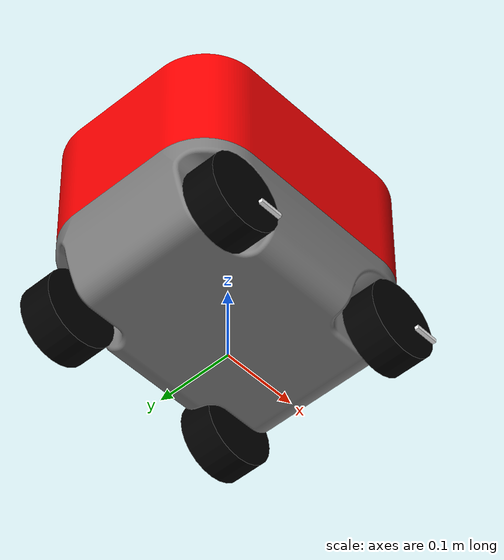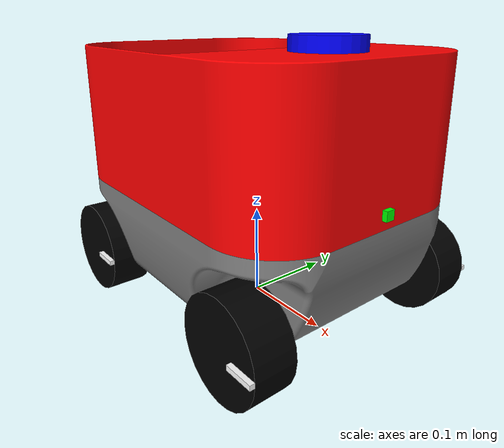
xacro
<?xml version="1.0" encoding="utf-8"?>
<robot name="officebot"
	xmlns:xacro="http://www.ros.org/wiki/xacro">
	<!-- Matherials -->
	<xacro:include filename="$(find officebot_description)/urdf/officebot_materials.xacro" />
    <!-- Gazebo parameters -->
    <xacro:include filename="$(find officebot_description)/urdf/officebot.gazebo" />
    <xacro:property name="clearance" value="0.100" />
    <xacro:property name="body_height" value="0.17" />
    <xacro:property name="wheel_radius" value="0.05035"/>
    <xacro:property name="wheel_separation" value="0.243"/>
    <xacro:property name="wheel_distance" value="0.125"/>
    <xacro:property name="wheel_width" value="0.043"/>
    <xacro:property name="wheel_marker_length" value="0.03"/>
    <xacro:property name="wheel_marker_width" value="0.005"/>
    <xacro:property name="mass" value="0.1"/>
    <xacro:property name="wheel_mass" value="0.2"/>
    <xacro:property name="marker_mass" value="0.0"/>
    <xacro:property name="inertia" value="0.3"/>
    <xacro:property name="PI" value="3.1415926"/>
    <xacro:property name="wheel_ixx" value="${wheel_mass*(3*wheel_radius*wheel_radius+wheel_width*wheel_width)/12}" />
    <xacro:property name="wheel_ixy" value="0.0" />
    <xacro:property name="wheel_ixz" value="0.0" />
    <xacro:property name="wheel_iyy" value="${wheel_mass*(3*wheel_radius*wheel_radius+wheel_width*wheel_width)/12}" />
    <xacro:property name="wheel_iyz" value="0.0" />
    <xacro:property name="wheel_izz" value="${wheel_mass*wheel_radius*wheel_radius/2}" />
	<!-- officebot_base -->
    <link name="base_link">
    </link>
	<link name="body_link">
		<visual>
			<origin xyz="0 0 -0.015" rpy="${PI/2} 0 ${PI/2}" />
            <geometry>
                <mesh filename="package://officebot_description/meshes/officebot_body_bottom.stl" scale="0.001 0.001 0.001" />
            </geometry>
			<material name="Grey" />
		</visual>
		<visual>
			<origin xyz="0 0 0.085" rpy="${PI/2} 0 ${PI/2}" />
            <geometry>
                <mesh filename="package://officebot_description/meshes/officebot_body_top.stl" scale="0.001 0.001 0.001" />
            </geometry>
			<material name="Red" />
		</visual>
		<collision>
			<origin xyz="0 0 -0.015" rpy="${PI/2} 0 ${PI/2}" />
            <geometry>
                <mesh filename="package://officebot_description/meshes/officebot_body_bottom.stl" scale="0.001 0.001 0.001" />
            </geometry>
		</collision>
        <inertial>
            <origin xyz="0 0 ${clearance}" rpy="0 0 0" />
            <mass value="${mass}" />
            <inertia ixx="${inertia}" ixy="0.0" ixz="0.0" iyy="${inertia}" iyz="0.0" izz="${inertia}" />
        </inertial>
	</link>
    <joint name="base_to_body" type="fixed">
        <axis rpy="0 0 0" xyz="0 0 0"/>
        <parent link="base_link" />
        <child link="body_link" />
        <origin xyz="0 0 ${wheel_radius}" rpy="0 0 0"/>
    </joint>
    <!-- Lidar -->
    <link name="laser">
        <inertial>
            <origin xyz="0 0 0" rpy="0 0 0" />
            <mass value="0.1" />
            <inertia ixx="0.0" ixy="0.0" ixz="0.0" iyy="0.0" iyz="0.0" izz="0.0" />
        </inertial>
        <visual>
            <origin xyz="0 0 0" rpy="0 0 0" />
            <geometry>
                <cylinder radius="0.036" length="0.021"/>
            </geometry>
            <material name="Blue" />
        </visual>
        <collision>
            <origin xyz="0 0 0" rpy="0 0 0"/>
            <geometry>
                <cylinder radius="0.036" length="0.021"/>
            </geometry>
        </collision>
    </link>
    <joint name="joint_sensor_laser" type="fixed">
    <!-- ${PI} ${PI * -0.375} -->
	    <origin xyz="0.100 0.0 0.235" rpy="0 0 0"/>
        <parent link="body_link"/>
        <child link="laser"/>
    </joint>
    <!-- IMU -->
    <link name="imu">
        <inertial>
            <origin xyz="0 0 0" rpy="0 0 0" />
            <mass value="0.1" />
            <inertia ixx="0.0" ixy="0.0" ixz="0.0" iyy="0.0" iyz="0.0" izz="0.0" />
        </inertial>
        <visual>
            <origin xyz="0 0 0" rpy="0 0 0" />
            <geometry>
                <box size="0.016 0.016 0.005" />
            </geometry>
            <material name="Blue" />
        </visual>
        <collision>
            <origin xyz="0 0 0" rpy="0 0 0"/>
            <geometry>
                <box size="0.016 0.016 0.005" />
            </geometry>
        </collision>
    </link>
    <joint name="joint_imu" type="fixed">
	    <origin xyz="0.0 0.0 0.062" rpy="0 0 0"/>
        <parent link="body_link"/>
        <child link="imu"/>
    </joint>
    <!-- Camera-->
    <link name="camera_link">
        <inertial>
            <origin xyz="0 0 0" rpy="0 0 0" />
            <mass value="0.1" />
            <inertia ixx="0.0" ixy="0.0" ixz="0.0" iyy="0.0" iyz="0.0" izz="0.0" />
        </inertial>
        <visual>
            <origin xyz="0 0 0" rpy="0 0 0" />
            <geometry>
                <box size="0.010 0.010 0.010" />
            </geometry>
            <material name="Green" />
        </visual>
        <collision>
            <origin xyz="0 0 0" rpy="0 0 0"/>
            <geometry>
                <box size="0.010 0.010 0.010" />
            </geometry>
        </collision>
    </link>
    <joint name="joint_sensor_camera" type="fixed">
        <parent link="body_link"/>
        <child link="camera_link"/>
        <origin xyz="0.175 0 0.100" rpy="0 0 0"/>
    </joint>
    <!-- IMU -->
    <!-- rear lidar -->
    <!-- Wheels -->
    <link name="rear_left_wheel">
        <visual>
			<origin xyz="0 0 0" rpy="${PI / 2} 0 0" />
            <geometry>
                <cylinder length="${wheel_width}" radius="${wheel_radius}"/>
            </geometry>
            <material name="Black" />
        </visual>
        <collision>
			<origin xyz="0 0 0" rpy="${PI / 2} 0 0" />
            <geometry>
                <cylinder length="${wheel_width}" radius="${wheel_radius}"/>
            </geometry>
        </collision>
        <inertial>
            <mass value="${wheel_mass}" />
            <inertia ixx="${wheel_ixx}" ixy="${wheel_ixy}" ixz="${wheel_ixz}" iyy="${wheel_iyy}" iyz="${wheel_iyz}" izz="${wheel_izz}" />
        </inertial>
    </link>
    <link name="rear_left_wheel_marker">
        <visual>
            <origin xyz="0 0 0" rpy="0 0 0" />
            <geometry>
                <box size="${wheel_marker_length} ${wheel_marker_width} ${wheel_marker_width}" />
            </geometry>
            <material name="White" />
        </visual>
        <inertial>
            <mass value="${marker_mass}" />
            <inertia ixx="0.0" ixy="0.0" ixz="0.0" iyy="0.0" iyz="0.0" izz="0.0" />
        </inertial>
    </link>
    <link name="rear_right_wheel">
        <visual>
			<origin xyz="0 0 0" rpy="${PI / 2} 0 0" />
            <geometry>
                <cylinder length="${wheel_width}" radius="${wheel_radius}"/>
            </geometry>
            <material name="Black" />
        </visual>
        <collision>
			<origin xyz="0 0 0" rpy="${PI / 2} 0 0" />
            <geometry>
                <cylinder length="${wheel_width}" radius="${wheel_radius}"/>
            </geometry>
        </collision>
        <inertial>
            <mass value="${wheel_mass}" />
            <inertia ixx="${wheel_ixx}" ixy="${wheel_ixy}" ixz="${wheel_ixz}" iyy="${wheel_iyy}" iyz="${wheel_iyz}" izz="${wheel_izz}" />
        </inertial>
    </link>
    <link name="rear_right_wheel_marker">
        <visual>
            <origin xyz="0 0 0" rpy="0 0 0" />
            <geometry>
                <box size="${wheel_marker_length} ${wheel_marker_width} ${wheel_marker_width}" />
            </geometry>
            <material name="White" />
        </visual>
        <inertial>
            <mass value="${marker_mass}" />
            <inertia ixx="0.0" ixy="0.0" ixz="0.0" iyy="0.0" iyz="0.0" izz="0.0" />
        </inertial>
    </link>
    <link name="front_left_wheel">
        <visual>
			<origin xyz="0 0 0" rpy="${PI / 2} 0 0" />
            <geometry>
                <cylinder length="${wheel_width}" radius="${wheel_radius}"/>
            </geometry>
            <material name="Black" />
        </visual>
        <collision>
			<origin xyz="0 0 0" rpy="${PI / 2} 0 0" />
            <geometry>
                <cylinder length="${wheel_width}" radius="${wheel_radius}"/>
            </geometry>
        </collision>
        <inertial>
            <mass value="${wheel_mass}" />
            <inertia ixx="${wheel_ixx}" ixy="${wheel_ixy}" ixz="${wheel_ixz}" iyy="${wheel_iyy}" iyz="${wheel_iyz}" izz="${wheel_izz}" />
        </inertial>
    </link>
    <link name="front_left_wheel_marker">
        <visual>
            <origin xyz="0 0 0" rpy="0 0 0" />
            <geometry>
                <box size="${wheel_marker_length} ${wheel_marker_width} ${wheel_marker_width}" />
            </geometry>
            <material name="White" />
        </visual>
        <inertial>
            <mass value="${marker_mass}" />
            <inertia ixx="0.0" ixy="0.0" ixz="0.0" iyy="0.0" iyz="0.0" izz="0.0" />
        </inertial>
    </link>
    <link name="front_right_wheel">
        <visual>
			<origin xyz="0 0 0" rpy="${PI / 2} 0 0" />
            <geometry>
                <cylinder length="${wheel_width}" radius="${wheel_radius}"/>
            </geometry>
            <material name="Black" />
        </visual>
        <collision>
			<origin xyz="0 0 0" rpy="${PI / 2} 0 0" />
            <geometry>
                <cylinder length="${wheel_width}" radius="${wheel_radius}"/>
            </geometry>
        </collision>
        <inertial>
            <mass value="${wheel_mass}" />
            <inertia ixx="${wheel_ixx}" ixy="${wheel_ixy}" ixz="${wheel_ixz}" iyy="${wheel_iyy}" iyz="${wheel_iyz}" izz="${wheel_izz}" />
        </inertial>
    </link>
    <link name="front_right_wheel_marker">
        <visual>
            <origin xyz="0 0 0" rpy="0 0 0" />
            <geometry>
                <box size="${wheel_marker_length} ${wheel_marker_width} ${wheel_marker_width}" />
            </geometry>
            <material name="White" />
        </visual>
        <inertial>
            <mass value="${marker_mass}" />
            <inertia ixx="0.0" ixy="0.0" ixz="0.0" iyy="0.0" iyz="0.0" izz="0.0" />
        </inertial>
    </link>
    <joint name="base_to_rear_left_wheel" type="continuous">
        <axis rpy="0 0 0" xyz="0 1 0"/>
        <parent link="body_link" />
        <child link="rear_left_wheel" />
        <origin xyz="-${wheel_distance} ${wheel_separation/2} 0" rpy="0 0 0"/>
        <dynamics damping="0.0" friction="0.0"/>
        <limit effort= "100" velocity="100"/>
    </joint>
    <joint name="base_to_rear_right_wheel" type="continuous">
        <axis rpy="0 0 0" xyz="0 1 0"/>
        <parent link="body_link" />
        <child link="rear_right_wheel" />
		<origin xyz="-${wheel_distance} ${-1 * (wheel_separation/2)} 0" rpy="0 0 0"/>
        <dynamics damping="0.0" friction="0.0"/>
        <limit effort= "100" velocity="100"/>
    </joint>
    <joint name="base_to_front_left_wheel" type="continuous">
        <axis rpy="0 0 0" xyz="0 1 0"/>
        <parent link="body_link" />
        <child link="front_left_wheel" />
		<origin xyz="${wheel_distance} ${wheel_separation/2} 0" rpy="0 0 0" />
        <dynamics damping="0.0" friction="0.0"/>
        <limit effort= "100" velocity="100"/>
    </joint>
    <joint name="base_to_front_right_wheel" type="continuous">
        <axis rpy="0 0 0" xyz="0 1 0"/>
        <parent link="body_link" />
        <child link="front_right_wheel" />
		<origin xyz="${wheel_distance} ${-1 * (wheel_separation/2)} 0" rpy="0 0 0" />
        <dynamics damping="0.0" friction="0.0"/>
        <limit effort= "100" velocity="100"/>
    </joint>
    <joint name="rear_left_wheel_to_marker" type="fixed">
        <parent link="rear_left_wheel" />
        <child link="rear_left_wheel_marker" />
        <origin xyz="${wheel_radius - wheel_marker_length / 2} ${wheel_width / 2 + wheel_marker_width / 2} 0" rpy="0 0 0" />
    </joint>
    <joint name="rear_right_wheel_to_marker" type="fixed">
        <parent link="rear_right_wheel" />
        <child link="rear_right_wheel_marker" />
        <origin xyz="${wheel_radius - wheel_marker_length / 2} -${wheel_width / 2 + wheel_marker_width / 2} 0" rpy="0 0 0" />
    </joint>
    <joint name="front_left_wheel_to_marker" type="fixed">
        <parent link="front_left_wheel" />
        <child link="front_left_wheel_marker" />
        <origin xyz="${wheel_radius - wheel_marker_length / 2} ${wheel_width / 2 + wheel_marker_width / 2} 0" rpy="0 0 0" />
    </joint>
    <joint name="front_right_wheel_to_marker" type="fixed">
        <parent link="front_right_wheel" />
        <child link="front_right_wheel_marker" />
        <origin xyz="${wheel_radius - wheel_marker_length / 2} -${wheel_width / 2 + wheel_marker_width / 2} 0" rpy="0 0 0" />
    </joint>
</robot>

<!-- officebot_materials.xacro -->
<robot
	xmlns:xacro="http://www.ros.org/wiki/xacro">
	<material name="Green">
		<color rgba="0.0 1.0 0.0 1.0"/>
	</material>
	<material name="Blue">
		<color rgba="0.0 0.0 1.0 1.0"/>
	</material>
	<material name="Red">
		<color rgba="1.0 0.0 0.0 1.0"/>
	</material>
	<material name="White">
		<color rgba="1.0 1.0 1.0 1.0"/>
	</material>
	<material name="Grey">
		<color rgba="0.5 0.5 0.5 1.0"/>
	</material>
	<material name="Black">
		<color rgba="0.0 0.0 0.0 1.0"/>
	</material>
	<material name="Yellow">
		<color rgba="1.0 1.0 0.0 1.0"/>
	</material>
</robot>
